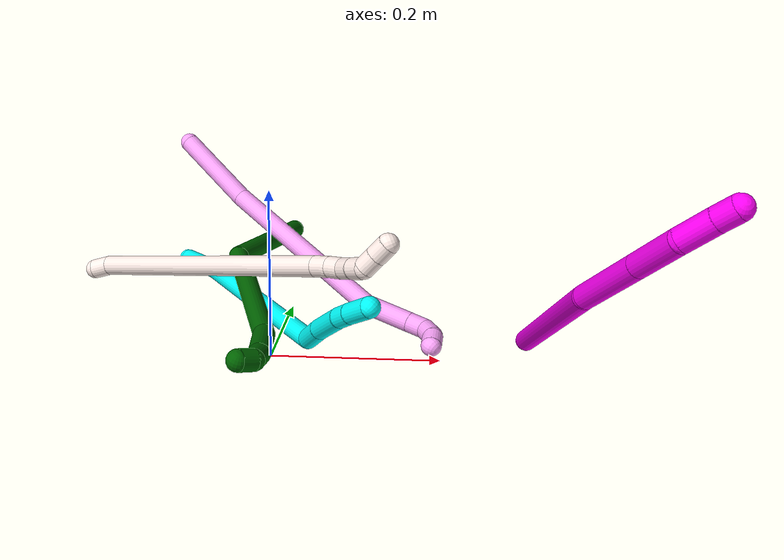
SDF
<sdf version="1.7">
 <world name="default">
  <model name="3">
   <static>0</static>
   <link name="3">
    <collision name="collision-cylinder-e_1_1_4">
     <pose>0.031587 -0.00819 -0.002259 1.83995 1.30806 1.57745</pose>
     <geometry><cylinder><radius>0.0125</radius><length>0.065418</length></cylinder></geometry>
     <surface>
      <friction><ode><mu>1.16</mu><mu2>1.16</mu2><slip1>0</slip1><slip2>0</slip2></ode></friction>
      <contact><ode><kp>1e+06</kp><kd>1</kd><max_vel>0</max_vel><min_depth>0.001</min_depth></ode></contact>
     </surface>
    </collision>
    <visual name="visual-cylinder-e_1_1_4">
     <pose>0.031587 -0.00819 -0.002259 1.83995 1.30806 1.57745</pose>
     <geometry><cylinder><radius>0.0125</radius><length>0.065418</length></cylinder></geometry>
     <material><ambient>0.003922 1 0.996078 1</ambient></material>
    </visual>
    <collision name="collision-cylinder-e_2_4_5">
     <pose>0.184734 -0.055429 -0.036492 2.25689 1.17727 1.90742</pose>
     <geometry><cylinder><radius>0.0125</radius><length>0.263243</length></cylinder></geometry>
     <surface>
      <friction><ode><mu>1.16</mu><mu2>1.16</mu2><slip1>0</slip1><slip2>0</slip2></ode></friction>
      <contact><ode><kp>1e+06</kp><kd>1</kd><max_vel>0</max_vel><min_depth>0.001</min_depth></ode></contact>
     </surface>
    </collision>
    <visual name="visual-cylinder-e_2_4_5">
     <pose>0.184734 -0.055429 -0.036492 2.25689 1.17727 1.90742</pose>
     <geometry><cylinder><radius>0.0125</radius><length>0.263243</length></cylinder></geometry>
     <material><ambient>0.003922 1 0.996078 1</ambient></material>
    </visual>
    <collision name="collision-cylinder-e_3_5_6">
     <pose>0.321094 -0.114647 -0.068887 1.59169 0.632976 0.645438</pose>
     <geometry><cylinder><radius>0.0125</radius><length>0.050037</length></cylinder></geometry>
     <surface>
      <friction><ode><mu>1.16</mu><mu2>1.16</mu2><slip1>0</slip1><slip2>0</slip2></ode></friction>
      <contact><ode><kp>1e+06</kp><kd>1</kd><max_vel>0</max_vel><min_depth>0.001</min_depth></ode></contact>
     </surface>
    </collision>
    <visual name="visual-cylinder-e_3_5_6">
     <pose>0.321094 -0.114647 -0.068887 1.59169 0.632976 0.645438</pose>
     <geometry><cylinder><radius>0.0125</radius><length>0.050037</length></cylinder></geometry>
     <material><ambient>0.003922 1 0.996078 1</ambient></material>
    </visual>
    <collision name="collision-cylinder-e_4_6_7">
     <pose>0.355429 -0.157884 -0.068773 1.5476 0.702489 0.687633</pose>
     <geometry><cylinder><radius>0.0125</radius><length>0.060469</length></cylinder></geometry>
     <surface>
      <friction><ode><mu>1.16</mu><mu2>1.16</mu2><slip1>0</slip1><slip2>0</slip2></ode></friction>
      <contact><ode><kp>1e+06</kp><kd>1</kd><max_vel>0</max_vel><min_depth>0.001</min_depth></ode></contact>
     </surface>
    </collision>
    <visual name="visual-cylinder-e_4_6_7">
     <pose>0.355429 -0.157884 -0.068773 1.5476 0.702489 0.687633</pose>
     <geometry><cylinder><radius>0.0125</radius><length>0.060469</length></cylinder></geometry>
     <material><ambient>0.003922 1 0.996078 1</ambient></material>
    </visual>
    <collision name="collision-cylinder-e_5_7_8">
     <pose>0.383493 -0.189018 -0.067125 1.43365 0.808691 0.713892</pose>
     <geometry><cylinder><radius>0.0125</radius><length>0.023582</length></cylinder></geometry>
     <surface>
      <friction><ode><mu>1.16</mu><mu2>1.16</mu2><slip1>0</slip1><slip2>0</slip2></ode></friction>
      <contact><ode><kp>1e+06</kp><kd>1</kd><max_vel>0</max_vel><min_depth>0.001</min_depth></ode></contact>
     </surface>
    </collision>
    <visual name="visual-cylinder-e_5_7_8">
     <pose>0.383493 -0.189018 -0.067125 1.43365 0.808691 0.713892</pose>
     <geometry><cylinder><radius>0.0125</radius><length>0.023582</length></cylinder></geometry>
     <material><ambient>0.003922 1 0.996078 1</ambient></material>
    </visual>
    <collision name="collision-cylinder-e_6_8_2">
     <pose>0.406178 -0.208929 -0.06352 1.36345 0.863304 0.715443</pose>
     <geometry><cylinder><radius>0.0125</radius><length>0.037251</length></cylinder></geometry>
     <surface>
      <friction><ode><mu>1.16</mu><mu2>1.16</mu2><slip1>0</slip1><slip2>0</slip2></ode></friction>
      <contact><ode><kp>1e+06</kp><kd>1</kd><max_vel>0</max_vel><min_depth>0.001</min_depth></ode></contact>
     </surface>
    </collision>
    <visual name="visual-cylinder-e_6_8_2">
     <pose>0.406178 -0.208929 -0.06352 1.36345 0.863304 0.715443</pose>
     <geometry><cylinder><radius>0.0125</radius><length>0.037251</length></cylinder></geometry>
     <material><ambient>0.003922 1 0.996078 1</ambient></material>
    </visual>
    <collision name="collision-sphere-2">
     <pose>0.420333 -0.220775 -0.061028 0 -0 0</pose>
     <geometry><sphere><radius>0.0125</radius></sphere></geometry>
     <surface>
      <friction><ode><mu>1.16</mu><mu2>1.16</mu2><slip1>0</slip1><slip2>0</slip2></ode></friction>
      <contact><ode><kp>1e+06</kp><kd>1</kd><max_vel>0</max_vel><min_depth>0.001</min_depth></ode></contact>
     </surface>
    </collision>
    <visual name="visual-sphere-2">
     <pose>0.420333 -0.220775 -0.061028 0 -0 0</pose>
     <geometry><sphere><radius>0.0125</radius></sphere></geometry>
     <material><ambient>0.003922 1 0.996078 1</ambient></material>
    </visual>
    <collision name="collision-sphere-4">
     <pose>0.063173 -0.016379 -0.004518 0 -0 0</pose>
     <geometry><sphere><radius>0.0125</radius></sphere></geometry>
     <surface>
      <friction><ode><mu>1.16</mu><mu2>1.16</mu2><slip1>0</slip1><slip2>0</slip2></ode></friction>
      <contact><ode><kp>1e+06</kp><kd>1</kd><max_vel>0</max_vel><min_depth>0.001</min_depth></ode></contact>
     </surface>
    </collision>
    <visual name="visual-sphere-4">
     <pose>0.063173 -0.016379 -0.004518 0 -0 0</pose>
     <geometry><sphere><radius>0.0125</radius></sphere></geometry>
     <material><ambient>0.003922 1 0.996078 1</ambient></material>
    </visual>
    <collision name="collision-sphere-1">
     <geometry><sphere><radius>0.0125</radius></sphere></geometry>
     <surface>
      <friction><ode><mu>1.16</mu><mu2>1.16</mu2><slip1>0</slip1><slip2>0</slip2></ode></friction>
      <contact><ode><kp>1e+06</kp><kd>1</kd><max_vel>0</max_vel><min_depth>0.001</min_depth></ode></contact>
     </surface>
    </collision>
    <visual name="visual-sphere-1">
     <geometry><sphere><radius>0.0125</radius></sphere></geometry>
     <material><ambient>0.003922 1 0.996078 1</ambient></material>
    </visual>
    <collision name="collision-sphere-8">
     <pose>0.392023 -0.197083 -0.066012 0 -0 0</pose>
     <geometry><sphere><radius>0.0125</radius></sphere></geometry>
     <surface>
      <friction><ode><mu>1.16</mu><mu2>1.16</mu2><slip1>0</slip1><slip2>0</slip2></ode></friction>
      <contact><ode><kp>1e+06</kp><kd>1</kd><max_vel>0</max_vel><min_depth>0.001</min_depth></ode></contact>
     </surface>
    </collision>
    <visual name="visual-sphere-8">
     <pose>0.392023 -0.197083 -0.066012 0 -0 0</pose>
     <geometry><sphere><radius>0.0125</radius></sphere></geometry>
     <material><ambient>0.003922 1 0.996078 1</ambient></material>
    </visual>
    <collision name="collision-sphere-5">
     <pose>0.306295 -0.09448 -0.068466 0 -0 0</pose>
     <geometry><sphere><radius>0.0125</radius></sphere></geometry>
     <surface>
      <friction><ode><mu>1.16</mu><mu2>1.16</mu2><slip1>0</slip1><slip2>0</slip2></ode></friction>
      <contact><ode><kp>1e+06</kp><kd>1</kd><max_vel>0</max_vel><min_depth>0.001</min_depth></ode></contact>
     </surface>
    </collision>
    <visual name="visual-sphere-5">
     <pose>0.306295 -0.09448 -0.068466 0 -0 0</pose>
     <geometry><sphere><radius>0.0125</radius></sphere></geometry>
     <material><ambient>0.003922 1 0.996078 1</ambient></material>
    </visual>
    <collision name="collision-sphere-6">
     <pose>0.335894 -0.134814 -0.069308 0 -0 0</pose>
     <geometry><sphere><radius>0.0125</radius></sphere></geometry>
     <surface>
      <friction><ode><mu>1.16</mu><mu2>1.16</mu2><slip1>0</slip1><slip2>0</slip2></ode></friction>
      <contact><ode><kp>1e+06</kp><kd>1</kd><max_vel>0</max_vel><min_depth>0.001</min_depth></ode></contact>
     </surface>
    </collision>
    <visual name="visual-sphere-6">
     <pose>0.335894 -0.134814 -0.069308 0 -0 0</pose>
     <geometry><sphere><radius>0.0125</radius></sphere></geometry>
     <material><ambient>0.003922 1 0.996078 1</ambient></material>
    </visual>
    <collision name="collision-sphere-7">
     <pose>0.374964 -0.180954 -0.068238 0 -0 0</pose>
     <geometry><sphere><radius>0.0125</radius></sphere></geometry>
     <surface>
      <friction><ode><mu>1.16</mu><mu2>1.16</mu2><slip1>0</slip1><slip2>0</slip2></ode></friction>
      <contact><ode><kp>1e+06</kp><kd>1</kd><max_vel>0</max_vel><min_depth>0.001</min_depth></ode></contact>
     </surface>
    </collision>
    <visual name="visual-sphere-7">
     <pose>0.374964 -0.180954 -0.068238 0 -0 0</pose>
     <geometry><sphere><radius>0.0125</radius></sphere></geometry>
     <material><ambient>0.003922 1 0.996078 1</ambient></material>
    </visual>
    <inertial>
     <pose>0.224858 -0.085302 -0.042617 0 -0 0</pose>
     <mass>0.5</mass>
     <inertia>
      <ixx>0.000443</ixx>
      <ixy>0</ixy>
      <ixz>0</ixz>
      <iyy>0.001957</iyy>
      <iyz>0</iyz>
      <izz>-0.000978</izz>
     </inertia>
    </inertial>
   </link>
   <pose>-0.162405 0.288501 0.041872 -0.997219 0.235406 -0.561123</pose>
  </model>
  <model name="4">
   <static>0</static>
   <link name="4">
    <collision name="collision-cylinder-e_1_1_4">
     <pose>-0.012872 0.002337 -0.056504 -3.10025 -0.223799 2.7777</pose>
     <geometry><cylinder><radius>0.0125</radius><length>0.115998</length></cylinder></geometry>
     <surface>
      <friction><ode><mu>1.16</mu><mu2>1.16</mu2><slip1>0</slip1><slip2>0</slip2></ode></friction>
      <contact><ode><kp>1e+06</kp><kd>1</kd><max_vel>0</max_vel><min_depth>0.001</min_depth></ode></contact>
     </surface>
    </collision>
    <visual name="visual-cylinder-e_1_1_4">
     <pose>-0.012872 0.002337 -0.056504 -3.10025 -0.223799 2.7777</pose>
     <geometry><cylinder><radius>0.0125</radius><length>0.115998</length></cylinder></geometry>
     <material><ambient>1 0.65098 0.996078 1</ambient></material>
    </visual>
    <collision name="collision-cylinder-e_2_4_5">
     <pose>-0.026803 -0.001243 -0.240394 3.09517 -0.008303 -0.353944</pose>
     <geometry><cylinder><radius>0.0125</radius><length>0.255054</length></cylinder></geometry>
     <surface>
      <friction><ode><mu>1.16</mu><mu2>1.16</mu2><slip1>0</slip1><slip2>0</slip2></ode></friction>
      <contact><ode><kp>1e+06</kp><kd>1</kd><max_vel>0</max_vel><min_depth>0.001</min_depth></ode></contact>
     </surface>
    </collision>
    <visual name="visual-cylinder-e_2_4_5">
     <pose>-0.026803 -0.001243 -0.240394 3.09517 -0.008303 -0.353944</pose>
     <geometry><cylinder><radius>0.0125</radius><length>0.255054</length></cylinder></geometry>
     <material><ambient>1 0.65098 0.996078 1</ambient></material>
    </visual>
    <collision name="collision-cylinder-e_3_5_6">
     <pose>-0.022754 -0.001487 -0.398262 -2.95761 0.163258 -1.45095</pose>
     <geometry><cylinder><radius>0.0125</radius><length>0.062848</length></cylinder></geometry>
     <surface>
      <friction><ode><mu>1.16</mu><mu2>1.16</mu2><slip1>0</slip1><slip2>0</slip2></ode></friction>
      <contact><ode><kp>1e+06</kp><kd>1</kd><max_vel>0</max_vel><min_depth>0.001</min_depth></ode></contact>
     </surface>
    </collision>
    <visual name="visual-cylinder-e_3_5_6">
     <pose>-0.022754 -0.001487 -0.398262 -2.95761 0.163258 -1.45095</pose>
     <geometry><cylinder><radius>0.0125</radius><length>0.062848</length></cylinder></geometry>
     <material><ambient>1 0.65098 0.996078 1</ambient></material>
    </visual>
    <collision name="collision-cylinder-e_4_6_7">
     <pose>-0.015956 0.00635 -0.439609 -2.94493 0.151441 -1.31117</pose>
     <geometry><cylinder><radius>0.0125</radius><length>0.022411</length></cylinder></geometry>
     <surface>
      <friction><ode><mu>1.16</mu><mu2>1.16</mu2><slip1>0</slip1><slip2>0</slip2></ode></friction>
      <contact><ode><kp>1e+06</kp><kd>1</kd><max_vel>0</max_vel><min_depth>0.001</min_depth></ode></contact>
     </surface>
    </collision>
    <visual name="visual-cylinder-e_4_6_7">
     <pose>-0.015956 0.00635 -0.439609 -2.94493 0.151441 -1.31117</pose>
     <geometry><cylinder><radius>0.0125</radius><length>0.022411</length></cylinder></geometry>
     <material><ambient>1 0.65098 0.996078 1</ambient></material>
    </visual>
    <collision name="collision-cylinder-e_5_7_8">
     <pose>-0.010521 0.003099 -0.460229 2.63485 0.323771 1.1254</pose>
     <geometry><cylinder><radius>0.0125</radius><length>0.02354</length></cylinder></geometry>
     <surface>
      <friction><ode><mu>1.16</mu><mu2>1.16</mu2><slip1>0</slip1><slip2>0</slip2></ode></friction>
      <contact><ode><kp>1e+06</kp><kd>1</kd><max_vel>0</max_vel><min_depth>0.001</min_depth></ode></contact>
     </surface>
    </collision>
    <visual name="visual-cylinder-e_5_7_8">
     <pose>-0.010521 0.003099 -0.460229 2.63485 0.323771 1.1254</pose>
     <geometry><cylinder><radius>0.0125</radius><length>0.02354</length></cylinder></geometry>
     <material><ambient>1 0.65098 0.996078 1</ambient></material>
    </visual>
    <collision name="collision-cylinder-e_6_8_2">
     <pose>-0.006143 -0.010568 -0.47573 2.17895 0.062949 0.120419</pose>
     <geometry><cylinder><radius>0.0125</radius><length>0.020149</length></cylinder></geometry>
     <surface>
      <friction><ode><mu>1.16</mu><mu2>1.16</mu2><slip1>0</slip1><slip2>0</slip2></ode></friction>
      <contact><ode><kp>1e+06</kp><kd>1</kd><max_vel>0</max_vel><min_depth>0.001</min_depth></ode></contact>
     </surface>
    </collision>
    <visual name="visual-cylinder-e_6_8_2">
     <pose>-0.006143 -0.010568 -0.47573 2.17895 0.062949 0.120419</pose>
     <geometry><cylinder><radius>0.0125</radius><length>0.020149</length></cylinder></geometry>
     <material><ambient>1 0.65098 0.996078 1</ambient></material>
    </visual>
    <collision name="collision-sphere-2">
     <pose>-0.005509 -0.01882 -0.481474 0 -0 0</pose>
     <geometry><sphere><radius>0.0125</radius></sphere></geometry>
     <surface>
      <friction><ode><mu>1.16</mu><mu2>1.16</mu2><slip1>0</slip1><slip2>0</slip2></ode></friction>
      <contact><ode><kp>1e+06</kp><kd>1</kd><max_vel>0</max_vel><min_depth>0.001</min_depth></ode></contact>
     </surface>
    </collision>
    <visual name="visual-sphere-2">
     <pose>-0.005509 -0.01882 -0.481474 0 -0 0</pose>
     <geometry><sphere><radius>0.0125</radius></sphere></geometry>
     <material><ambient>1 0.65098 0.996078 1</ambient></material>
    </visual>
    <collision name="collision-sphere-4">
     <pose>-0.025744 0.004675 -0.113008 0 -0 0</pose>
     <geometry><sphere><radius>0.0125</radius></sphere></geometry>
     <surface>
      <friction><ode><mu>1.16</mu><mu2>1.16</mu2><slip1>0</slip1><slip2>0</slip2></ode></friction>
      <contact><ode><kp>1e+06</kp><kd>1</kd><max_vel>0</max_vel><min_depth>0.001</min_depth></ode></contact>
     </surface>
    </collision>
    <visual name="visual-sphere-4">
     <pose>-0.025744 0.004675 -0.113008 0 -0 0</pose>
     <geometry><sphere><radius>0.0125</radius></sphere></geometry>
     <material><ambient>1 0.65098 0.996078 1</ambient></material>
    </visual>
    <collision name="collision-sphere-1">
     <geometry><sphere><radius>0.0125</radius></sphere></geometry>
     <surface>
      <friction><ode><mu>1.16</mu><mu2>1.16</mu2><slip1>0</slip1><slip2>0</slip2></ode></friction>
      <contact><ode><kp>1e+06</kp><kd>1</kd><max_vel>0</max_vel><min_depth>0.001</min_depth></ode></contact>
     </surface>
    </collision>
    <visual name="visual-sphere-1">
     <geometry><sphere><radius>0.0125</radius></sphere></geometry>
     <material><ambient>1 0.65098 0.996078 1</ambient></material>
    </visual>
    <collision name="collision-sphere-8">
     <pose>-0.006777 -0.002317 -0.469985 0 -0 0</pose>
     <geometry><sphere><radius>0.0125</radius></sphere></geometry>
     <surface>
      <friction><ode><mu>1.16</mu><mu2>1.16</mu2><slip1>0</slip1><slip2>0</slip2></ode></friction>
      <contact><ode><kp>1e+06</kp><kd>1</kd><max_vel>0</max_vel><min_depth>0.001</min_depth></ode></contact>
     </surface>
    </collision>
    <visual name="visual-sphere-8">
     <pose>-0.006777 -0.002317 -0.469985 0 -0 0</pose>
     <geometry><sphere><radius>0.0125</radius></sphere></geometry>
     <material><ambient>1 0.65098 0.996078 1</ambient></material>
    </visual>
    <collision name="collision-sphere-5">
     <pose>-0.027862 -0.00716 -0.367779 0 -0 0</pose>
     <geometry><sphere><radius>0.0125</radius></sphere></geometry>
     <surface>
      <friction><ode><mu>1.16</mu><mu2>1.16</mu2><slip1>0</slip1><slip2>0</slip2></ode></friction>
      <contact><ode><kp>1e+06</kp><kd>1</kd><max_vel>0</max_vel><min_depth>0.001</min_depth></ode></contact>
     </surface>
    </collision>
    <visual name="visual-sphere-5">
     <pose>-0.027862 -0.00716 -0.367779 0 -0 0</pose>
     <geometry><sphere><radius>0.0125</radius></sphere></geometry>
     <material><ambient>1 0.65098 0.996078 1</ambient></material>
    </visual>
    <collision name="collision-sphere-6">
     <pose>-0.017647 0.004185 -0.428745 0 -0 0</pose>
     <geometry><sphere><radius>0.0125</radius></sphere></geometry>
     <surface>
      <friction><ode><mu>1.16</mu><mu2>1.16</mu2><slip1>0</slip1><slip2>0</slip2></ode></friction>
      <contact><ode><kp>1e+06</kp><kd>1</kd><max_vel>0</max_vel><min_depth>0.001</min_depth></ode></contact>
     </surface>
    </collision>
    <visual name="visual-sphere-6">
     <pose>-0.017647 0.004185 -0.428745 0 -0 0</pose>
     <geometry><sphere><radius>0.0125</radius></sphere></geometry>
     <material><ambient>1 0.65098 0.996078 1</ambient></material>
    </visual>
    <collision name="collision-sphere-7">
     <pose>-0.014266 0.008514 -0.450473 0 -0 0</pose>
     <geometry><sphere><radius>0.0125</radius></sphere></geometry>
     <surface>
      <friction><ode><mu>1.16</mu><mu2>1.16</mu2><slip1>0</slip1><slip2>0</slip2></ode></friction>
      <contact><ode><kp>1e+06</kp><kd>1</kd><max_vel>0</max_vel><min_depth>0.001</min_depth></ode></contact>
     </surface>
    </collision>
    <visual name="visual-sphere-7">
     <pose>-0.014266 0.008514 -0.450473 0 -0 0</pose>
     <geometry><sphere><radius>0.0125</radius></sphere></geometry>
     <material><ambient>1 0.65098 0.996078 1</ambient></material>
    </visual>
    <inertial>
     <pose>-0.020977 -0.000274 -0.246338 0 -0 0</pose>
     <mass>0.5</mass>
     <inertia>
      <ixx>0.00073</ixx>
      <ixy>0</ixy>
      <ixz>0</ixz>
      <iyy>-0.001642</iyy>
      <iyz>0</iyz>
      <izz>5.6e-05</izz>
     </inertia>
    </inertial>
   </link>
   <pose>-0.155624 0.291275 0.20924 0.311859 -1.14247 -0.967291</pose>
  </model>
  <model name="6">
   <static>0</static>
   <link name="6">
    <collision name="collision-cylinder-e_1_1_4">
     <pose>-0.060504 -0.063833 0.022299 1.23471 -0.729947 -0.529765</pose>
     <geometry><cylinder><radius>0.0125</radius><length>0.181468</length></cylinder></geometry>
     <surface>
      <friction><ode><mu>1.16</mu><mu2>1.16</mu2><slip1>0</slip1><slip2>0</slip2></ode></friction>
      <contact><ode><kp>1e+06</kp><kd>1</kd><max_vel>0</max_vel><min_depth>0.001</min_depth></ode></contact>
     </surface>
    </collision>
    <visual name="visual-cylinder-e_1_1_4">
     <pose>-0.060504 -0.063833 0.022299 1.23471 -0.729947 -0.529765</pose>
     <geometry><cylinder><radius>0.0125</radius><length>0.181468</length></cylinder></geometry>
     <material><ambient>0 0.392157 0.003922 1</ambient></material>
    </visual>
    <collision name="collision-cylinder-e_2_4_5">
     <pose>-0.134074 -0.229665 0.070539 1.32175 -0.123508 -0.096077</pose>
     <geometry><cylinder><radius>0.0125</radius><length>0.212108</length></cylinder></geometry>
     <surface>
      <friction><ode><mu>1.16</mu><mu2>1.16</mu2><slip1>0</slip1><slip2>0</slip2></ode></friction>
      <contact><ode><kp>1e+06</kp><kd>1</kd><max_vel>0</max_vel><min_depth>0.001</min_depth></ode></contact>
     </surface>
    </collision>
    <visual name="visual-cylinder-e_2_4_5">
     <pose>-0.134074 -0.229665 0.070539 1.32175 -0.123508 -0.096077</pose>
     <geometry><cylinder><radius>0.0125</radius><length>0.212108</length></cylinder></geometry>
     <material><ambient>0 0.392157 0.003922 1</ambient></material>
    </visual>
    <collision name="collision-cylinder-e_3_5_6">
     <pose>-0.158635 -0.35872 0.106738 1.20838 -0.378186 -0.262699</pose>
     <geometry><cylinder><radius>0.0125</radius><length>0.06227</length></cylinder></geometry>
     <surface>
      <friction><ode><mu>1.16</mu><mu2>1.16</mu2><slip1>0</slip1><slip2>0</slip2></ode></friction>
      <contact><ode><kp>1e+06</kp><kd>1</kd><max_vel>0</max_vel><min_depth>0.001</min_depth></ode></contact>
     </surface>
    </collision>
    <visual name="visual-cylinder-e_3_5_6">
     <pose>-0.158635 -0.35872 0.106738 1.20838 -0.378186 -0.262699</pose>
     <geometry><cylinder><radius>0.0125</radius><length>0.06227</length></cylinder></geometry>
     <material><ambient>0 0.392157 0.003922 1</ambient></material>
    </visual>
    <collision name="collision-cylinder-e_4_6_7">
     <pose>-0.176445 -0.395079 0.121279 1.13943 -0.552473 -0.359266</pose>
     <geometry><cylinder><radius>0.0125</radius><length>0.024063</length></cylinder></geometry>
     <surface>
      <friction><ode><mu>1.16</mu><mu2>1.16</mu2><slip1>0</slip1><slip2>0</slip2></ode></friction>
      <contact><ode><kp>1e+06</kp><kd>1</kd><max_vel>0</max_vel><min_depth>0.001</min_depth></ode></contact>
     </surface>
    </collision>
    <visual name="visual-cylinder-e_4_6_7">
     <pose>-0.176445 -0.395079 0.121279 1.13943 -0.552473 -0.359266</pose>
     <geometry><cylinder><radius>0.0125</radius><length>0.024063</length></cylinder></geometry>
     <material><ambient>0 0.392157 0.003922 1</ambient></material>
    </visual>
    <collision name="collision-cylinder-e_5_7_2">
     <pose>-0.192374 -0.406883 0.127053 1.03295 -1.27676 -0.797618</pose>
     <geometry><cylinder><radius>0.0125</radius><length>0.02009</length></cylinder></geometry>
     <surface>
      <friction><ode><mu>1.16</mu><mu2>1.16</mu2><slip1>0</slip1><slip2>0</slip2></ode></friction>
      <contact><ode><kp>1e+06</kp><kd>1</kd><max_vel>0</max_vel><min_depth>0.001</min_depth></ode></contact>
     </surface>
    </collision>
    <visual name="visual-cylinder-e_5_7_2">
     <pose>-0.192374 -0.406883 0.127053 1.03295 -1.27676 -0.797618</pose>
     <geometry><cylinder><radius>0.0125</radius><length>0.02009</length></cylinder></geometry>
     <material><ambient>0 0.392157 0.003922 1</ambient></material>
    </visual>
    <collision name="collision-sphere-2">
     <pose>-0.201987 -0.409383 0.128544 0 -0 0</pose>
     <geometry><sphere><radius>0.0125</radius></sphere></geometry>
     <surface>
      <friction><ode><mu>1.16</mu><mu2>1.16</mu2><slip1>0</slip1><slip2>0</slip2></ode></friction>
      <contact><ode><kp>1e+06</kp><kd>1</kd><max_vel>0</max_vel><min_depth>0.001</min_depth></ode></contact>
     </surface>
    </collision>
    <visual name="visual-sphere-2">
     <pose>-0.201987 -0.409383 0.128544 0 -0 0</pose>
     <geometry><sphere><radius>0.0125</radius></sphere></geometry>
     <material><ambient>0 0.392157 0.003922 1</ambient></material>
    </visual>
    <collision name="collision-sphere-7">
     <pose>-0.18276 -0.404383 0.125561 0 -0 0</pose>
     <geometry><sphere><radius>0.0125</radius></sphere></geometry>
     <surface>
      <friction><ode><mu>1.16</mu><mu2>1.16</mu2><slip1>0</slip1><slip2>0</slip2></ode></friction>
      <contact><ode><kp>1e+06</kp><kd>1</kd><max_vel>0</max_vel><min_depth>0.001</min_depth></ode></contact>
     </surface>
    </collision>
    <visual name="visual-sphere-7">
     <pose>-0.18276 -0.404383 0.125561 0 -0 0</pose>
     <geometry><sphere><radius>0.0125</radius></sphere></geometry>
     <material><ambient>0 0.392157 0.003922 1</ambient></material>
    </visual>
    <collision name="collision-sphere-6">
     <pose>-0.170131 -0.385775 0.116997 0 -0 0</pose>
     <geometry><sphere><radius>0.0125</radius></sphere></geometry>
     <surface>
      <friction><ode><mu>1.16</mu><mu2>1.16</mu2><slip1>0</slip1><slip2>0</slip2></ode></friction>
      <contact><ode><kp>1e+06</kp><kd>1</kd><max_vel>0</max_vel><min_depth>0.001</min_depth></ode></contact>
     </surface>
    </collision>
    <visual name="visual-sphere-6">
     <pose>-0.170131 -0.385775 0.116997 0 -0 0</pose>
     <geometry><sphere><radius>0.0125</radius></sphere></geometry>
     <material><ambient>0 0.392157 0.003922 1</ambient></material>
    </visual>
    <collision name="collision-sphere-5">
     <pose>-0.147139 -0.331665 0.09648 0 -0 0</pose>
     <geometry><sphere><radius>0.0125</radius></sphere></geometry>
     <surface>
      <friction><ode><mu>1.16</mu><mu2>1.16</mu2><slip1>0</slip1><slip2>0</slip2></ode></friction>
      <contact><ode><kp>1e+06</kp><kd>1</kd><max_vel>0</max_vel><min_depth>0.001</min_depth></ode></contact>
     </surface>
    </collision>
    <visual name="visual-sphere-5">
     <pose>-0.147139 -0.331665 0.09648 0 -0 0</pose>
     <geometry><sphere><radius>0.0125</radius></sphere></geometry>
     <material><ambient>0 0.392157 0.003922 1</ambient></material>
    </visual>
    <collision name="collision-sphere-1">
     <geometry><sphere><radius>0.0125</radius></sphere></geometry>
     <surface>
      <friction><ode><mu>1.16</mu><mu2>1.16</mu2><slip1>0</slip1><slip2>0</slip2></ode></friction>
      <contact><ode><kp>1e+06</kp><kd>1</kd><max_vel>0</max_vel><min_depth>0.001</min_depth></ode></contact>
     </surface>
    </collision>
    <visual name="visual-sphere-1">
     <geometry><sphere><radius>0.0125</radius></sphere></geometry>
     <material><ambient>0 0.392157 0.003922 1</ambient></material>
    </visual>
    <collision name="collision-sphere-4">
     <pose>-0.121008 -0.127666 0.044599 0 -0 0</pose>
     <geometry><sphere><radius>0.0125</radius></sphere></geometry>
     <surface>
      <friction><ode><mu>1.16</mu><mu2>1.16</mu2><slip1>0</slip1><slip2>0</slip2></ode></friction>
      <contact><ode><kp>1e+06</kp><kd>1</kd><max_vel>0</max_vel><min_depth>0.001</min_depth></ode></contact>
     </surface>
    </collision>
    <visual name="visual-sphere-4">
     <pose>-0.121008 -0.127666 0.044599 0 -0 0</pose>
     <geometry><sphere><radius>0.0125</radius></sphere></geometry>
     <material><ambient>0 0.392157 0.003922 1</ambient></material>
    </visual>
    <inertial>
     <pose>-0.114813 -0.200633 0.062252 0 -0 0</pose>
     <mass>0.5</mass>
     <inertia>
      <ixx>0.000852</ixx>
      <ixy>0</ixy>
      <ixz>0</ixz>
      <iyy>0.000218</iyy>
      <iyz>0</iyz>
      <izz>0.001606</izz>
     </inertia>
    </inertial>
   </link>
   <pose>-0.008106 0.2885 0.087684 0.447422 0.161821 0.461262</pose>
  </model>
  <model name="10">
   <static>0</static>
   <link name="10">
    <collision name="collision-cylinder-e_1_1_4">
     <pose>-0.005886 -0.026728 0.14253 0.185372 -0.040564 -0.003771</pose>
     <geometry><cylinder><radius>0.0125</radius><length>0.290267</length></cylinder></geometry>
     <surface>
      <friction><ode><mu>1.16</mu><mu2>1.16</mu2><slip1>0</slip1><slip2>0</slip2></ode></friction>
      <contact><ode><kp>1e+06</kp><kd>1</kd><max_vel>0</max_vel><min_depth>0.001</min_depth></ode></contact>
     </surface>
    </collision>
    <visual name="visual-cylinder-e_1_1_4">
     <pose>-0.005886 -0.026728 0.14253 0.185372 -0.040564 -0.003771</pose>
     <geometry><cylinder><radius>0.0125</radius><length>0.290267</length></cylinder></geometry>
     <material><ambient>1 0 0.964706 1</ambient></material>
    </visual>
    <collision name="collision-cylinder-e_2_4_5">
     <pose>-0.00084 -0.052652 0.328596 -0.018446 0.245942 -0.00228</pose>
     <geometry><cylinder><radius>0.0125</radius><length>0.08979</length></cylinder></geometry>
     <surface>
      <friction><ode><mu>1.16</mu><mu2>1.16</mu2><slip1>0</slip1><slip2>0</slip2></ode></friction>
      <contact><ode><kp>1e+06</kp><kd>1</kd><max_vel>0</max_vel><min_depth>0.001</min_depth></ode></contact>
     </surface>
    </collision>
    <visual name="visual-cylinder-e_2_4_5">
     <pose>-0.00084 -0.052652 0.328596 -0.018446 0.245942 -0.00228</pose>
     <geometry><cylinder><radius>0.0125</radius><length>0.08979</length></cylinder></geometry>
     <material><ambient>1 0 0.964706 1</ambient></material>
    </visual>
    <collision name="collision-cylinder-e_3_5_6">
     <pose>0.017803 -0.051093 0.401771 -0.02551 0.254502 -0.003264</pose>
     <geometry><cylinder><radius>0.0125</radius><length>0.06127</length></cylinder></geometry>
     <surface>
      <friction><ode><mu>1.16</mu><mu2>1.16</mu2><slip1>0</slip1><slip2>0</slip2></ode></friction>
      <contact><ode><kp>1e+06</kp><kd>1</kd><max_vel>0</max_vel><min_depth>0.001</min_depth></ode></contact>
     </surface>
    </collision>
    <visual name="visual-cylinder-e_3_5_6">
     <pose>0.017803 -0.051093 0.401771 -0.02551 0.254502 -0.003264</pose>
     <geometry><cylinder><radius>0.0125</radius><length>0.06127</length></cylinder></geometry>
     <material><ambient>1 0 0.964706 1</ambient></material>
    </visual>
    <collision name="collision-cylinder-e_4_6_7">
     <pose>0.035809 -0.044889 0.445517 -0.368488 0.597631 -0.114685</pose>
     <geometry><cylinder><radius>0.0125</radius><length>0.036588</length></cylinder></geometry>
     <surface>
      <friction><ode><mu>1.16</mu><mu2>1.16</mu2><slip1>0</slip1><slip2>0</slip2></ode></friction>
      <contact><ode><kp>1e+06</kp><kd>1</kd><max_vel>0</max_vel><min_depth>0.001</min_depth></ode></contact>
     </surface>
    </collision>
    <visual name="visual-cylinder-e_4_6_7">
     <pose>0.035809 -0.044889 0.445517 -0.368488 0.597631 -0.114685</pose>
     <geometry><cylinder><radius>0.0125</radius><length>0.036588</length></cylinder></geometry>
     <material><ambient>1 0 0.964706 1</ambient></material>
    </visual>
    <collision name="collision-cylinder-e_5_7_2">
     <pose>0.052264 -0.03661 0.468341 -0.31421 0.591915 -0.096528</pose>
     <geometry><cylinder><radius>0.0125</radius><length>0.022085</length></cylinder></geometry>
     <surface>
      <friction><ode><mu>1.16</mu><mu2>1.16</mu2><slip1>0</slip1><slip2>0</slip2></ode></friction>
      <contact><ode><kp>1e+06</kp><kd>1</kd><max_vel>0</max_vel><min_depth>0.001</min_depth></ode></contact>
     </surface>
    </collision>
    <visual name="visual-cylinder-e_5_7_2">
     <pose>0.052264 -0.03661 0.468341 -0.31421 0.591915 -0.096528</pose>
     <geometry><cylinder><radius>0.0125</radius><length>0.022085</length></cylinder></geometry>
     <material><ambient>1 0 0.964706 1</ambient></material>
    </visual>
    <collision name="collision-sphere-2">
     <pose>0.058426 -0.033777 0.477056 0 -0 0</pose>
     <geometry><sphere><radius>0.0125</radius></sphere></geometry>
     <surface>
      <friction><ode><mu>1.16</mu><mu2>1.16</mu2><slip1>0</slip1><slip2>0</slip2></ode></friction>
      <contact><ode><kp>1e+06</kp><kd>1</kd><max_vel>0</max_vel><min_depth>0.001</min_depth></ode></contact>
     </surface>
    </collision>
    <visual name="visual-sphere-2">
     <pose>0.058426 -0.033777 0.477056 0 -0 0</pose>
     <geometry><sphere><radius>0.0125</radius></sphere></geometry>
     <material><ambient>1 0 0.964706 1</ambient></material>
    </visual>
    <collision name="collision-sphere-7">
     <pose>0.046103 -0.039442 0.459625 0 -0 0</pose>
     <geometry><sphere><radius>0.0125</radius></sphere></geometry>
     <surface>
      <friction><ode><mu>1.16</mu><mu2>1.16</mu2><slip1>0</slip1><slip2>0</slip2></ode></friction>
      <contact><ode><kp>1e+06</kp><kd>1</kd><max_vel>0</max_vel><min_depth>0.001</min_depth></ode></contact>
     </surface>
    </collision>
    <visual name="visual-sphere-7">
     <pose>0.046103 -0.039442 0.459625 0 -0 0</pose>
     <geometry><sphere><radius>0.0125</radius></sphere></geometry>
     <material><ambient>1 0 0.964706 1</ambient></material>
    </visual>
    <collision name="collision-sphere-6">
     <pose>0.025516 -0.050337 0.43141 0 -0 0</pose>
     <geometry><sphere><radius>0.0125</radius></sphere></geometry>
     <surface>
      <friction><ode><mu>1.16</mu><mu2>1.16</mu2><slip1>0</slip1><slip2>0</slip2></ode></friction>
      <contact><ode><kp>1e+06</kp><kd>1</kd><max_vel>0</max_vel><min_depth>0.001</min_depth></ode></contact>
     </surface>
    </collision>
    <visual name="visual-sphere-6">
     <pose>0.025516 -0.050337 0.43141 0 -0 0</pose>
     <geometry><sphere><radius>0.0125</radius></sphere></geometry>
     <material><ambient>1 0 0.964706 1</ambient></material>
    </visual>
    <collision name="collision-sphere-5">
     <pose>0.01009 -0.051849 0.372133 0 -0 0</pose>
     <geometry><sphere><radius>0.0125</radius></sphere></geometry>
     <surface>
      <friction><ode><mu>1.16</mu><mu2>1.16</mu2><slip1>0</slip1><slip2>0</slip2></ode></friction>
      <contact><ode><kp>1e+06</kp><kd>1</kd><max_vel>0</max_vel><min_depth>0.001</min_depth></ode></contact>
     </surface>
    </collision>
    <visual name="visual-sphere-5">
     <pose>0.01009 -0.051849 0.372133 0 -0 0</pose>
     <geometry><sphere><radius>0.0125</radius></sphere></geometry>
     <material><ambient>1 0 0.964706 1</ambient></material>
    </visual>
    <collision name="collision-sphere-1">
     <geometry><sphere><radius>0.0125</radius></sphere></geometry>
     <surface>
      <friction><ode><mu>1.16</mu><mu2>1.16</mu2><slip1>0</slip1><slip2>0</slip2></ode></friction>
      <contact><ode><kp>1e+06</kp><kd>1</kd><max_vel>0</max_vel><min_depth>0.001</min_depth></ode></contact>
     </surface>
    </collision>
    <visual name="visual-sphere-1">
     <geometry><sphere><radius>0.0125</radius></sphere></geometry>
     <material><ambient>1 0 0.964706 1</ambient></material>
    </visual>
    <collision name="collision-sphere-4">
     <pose>-0.011771 -0.053456 0.285059 0 -0 0</pose>
     <geometry><sphere><radius>0.0125</radius></sphere></geometry>
     <surface>
      <friction><ode><mu>1.16</mu><mu2>1.16</mu2><slip1>0</slip1><slip2>0</slip2></ode></friction>
      <contact><ode><kp>1e+06</kp><kd>1</kd><max_vel>0</max_vel><min_depth>0.001</min_depth></ode></contact>
     </surface>
    </collision>
    <visual name="visual-sphere-4">
     <pose>-0.011771 -0.053456 0.285059 0 -0 0</pose>
     <geometry><sphere><radius>0.0125</radius></sphere></geometry>
     <material><ambient>1 0 0.964706 1</ambient></material>
    </visual>
    <inertial>
     <pose>0.003543 -0.036135 0.244273 0 -0 0</pose>
     <mass>0.5</mass>
     <inertia>
      <ixx>0.002132</ixx>
      <ixy>0</ixy>
      <ixz>0</ixz>
      <iyy>0.002095</iyy>
      <iyz>0</iyz>
      <izz>0.000469</izz>
     </inertia>
    </inertial>
   </link>
   <pose>0.303549 0.050582 0.011497 0.914898 0.180383 0.080154</pose>
  </model>
  <model name="11">
   <static>0</static>
   <link name="11">
    <collision name="collision-cylinder-e_1_1_4">
     <pose>0.002994 -0.00373 -0.010817 2.80952 0.25597 1.30976</pose>
     <geometry><cylinder><radius>0.0125</radius><length>0.023654</length></cylinder></geometry>
     <surface>
      <friction><ode><mu>1.16</mu><mu2>1.16</mu2><slip1>0</slip1><slip2>0</slip2></ode></friction>
      <contact><ode><kp>1e+06</kp><kd>1</kd><max_vel>0</max_vel><min_depth>0.001</min_depth></ode></contact>
     </surface>
    </collision>
    <visual name="visual-cylinder-e_1_1_4">
     <pose>0.002994 -0.00373 -0.010817 2.80952 0.25597 1.30976</pose>
     <geometry><cylinder><radius>0.0125</radius><length>0.023654</length></cylinder></geometry>
     <material><ambient>1 0.933333 0.909804 1</ambient></material>
    </visual>
    <collision name="collision-cylinder-e_2_4_5">
     <pose>0.070585 -0.105686 -0.15322 2.50035 0.374791 1.03766</pose>
     <geometry><cylinder><radius>0.0125</radius><length>0.352907</length></cylinder></geometry>
     <surface>
      <friction><ode><mu>1.16</mu><mu2>1.16</mu2><slip1>0</slip1><slip2>0</slip2></ode></friction>
      <contact><ode><kp>1e+06</kp><kd>1</kd><max_vel>0</max_vel><min_depth>0.001</min_depth></ode></contact>
     </surface>
    </collision>
    <visual name="visual-cylinder-e_2_4_5">
     <pose>0.070585 -0.105686 -0.15322 2.50035 0.374791 1.03766</pose>
     <geometry><cylinder><radius>0.0125</radius><length>0.352907</length></cylinder></geometry>
     <material><ambient>1 0.933333 0.909804 1</ambient></material>
    </visual>
    <collision name="collision-cylinder-e_3_5_6">
     <pose>0.139395 -0.2104 -0.292544 2.4439 0.395349 1.00671</pose>
     <geometry><cylinder><radius>0.0125</radius><length>0.021884</length></cylinder></geometry>
     <surface>
      <friction><ode><mu>1.16</mu><mu2>1.16</mu2><slip1>0</slip1><slip2>0</slip2></ode></friction>
      <contact><ode><kp>1e+06</kp><kd>1</kd><max_vel>0</max_vel><min_depth>0.001</min_depth></ode></contact>
     </surface>
    </collision>
    <visual name="visual-cylinder-e_3_5_6">
     <pose>0.139395 -0.2104 -0.292544 2.4439 0.395349 1.00671</pose>
     <geometry><cylinder><radius>0.0125</radius><length>0.021884</length></cylinder></geometry>
     <material><ambient>1 0.933333 0.909804 1</ambient></material>
    </visual>
    <collision name="collision-cylinder-e_4_6_7">
     <pose>0.147671 -0.223374 -0.306977 2.37204 0.410925 0.95056</pose>
     <geometry><cylinder><radius>0.0125</radius><length>0.020336</length></cylinder></geometry>
     <surface>
      <friction><ode><mu>1.16</mu><mu2>1.16</mu2><slip1>0</slip1><slip2>0</slip2></ode></friction>
      <contact><ode><kp>1e+06</kp><kd>1</kd><max_vel>0</max_vel><min_depth>0.001</min_depth></ode></contact>
     </surface>
    </collision>
    <visual name="visual-cylinder-e_4_6_7">
     <pose>0.147671 -0.223374 -0.306977 2.37204 0.410925 0.95056</pose>
     <geometry><cylinder><radius>0.0125</radius><length>0.020336</length></cylinder></geometry>
     <material><ambient>1 0.933333 0.909804 1</ambient></material>
    </visual>
    <collision name="collision-cylinder-e_5_7_8">
     <pose>0.158485 -0.236042 -0.318855 2.26847 0.696885 1.32306</pose>
     <geometry><cylinder><radius>0.0125</radius><length>0.02104</length></cylinder></geometry>
     <surface>
      <friction><ode><mu>1.16</mu><mu2>1.16</mu2><slip1>0</slip1><slip2>0</slip2></ode></friction>
      <contact><ode><kp>1e+06</kp><kd>1</kd><max_vel>0</max_vel><min_depth>0.001</min_depth></ode></contact>
     </surface>
    </collision>
    <visual name="visual-cylinder-e_5_7_8">
     <pose>0.158485 -0.236042 -0.318855 2.26847 0.696885 1.32306</pose>
     <geometry><cylinder><radius>0.0125</radius><length>0.02104</length></cylinder></geometry>
     <material><ambient>1 0.933333 0.909804 1</ambient></material>
    </visual>
    <collision name="collision-cylinder-e_6_8_9">
     <pose>0.171224 -0.24806 -0.329609 2.33306 0.638444 1.31557</pose>
     <geometry><cylinder><radius>0.0125</radius><length>0.020095</length></cylinder></geometry>
     <surface>
      <friction><ode><mu>1.16</mu><mu2>1.16</mu2><slip1>0</slip1><slip2>0</slip2></ode></friction>
      <contact><ode><kp>1e+06</kp><kd>1</kd><max_vel>0</max_vel><min_depth>0.001</min_depth></ode></contact>
     </surface>
    </collision>
    <visual name="visual-cylinder-e_6_8_9">
     <pose>0.171224 -0.24806 -0.329609 2.33306 0.638444 1.31557</pose>
     <geometry><cylinder><radius>0.0125</radius><length>0.020095</length></cylinder></geometry>
     <material><ambient>1 0.933333 0.909804 1</ambient></material>
    </visual>
    <collision name="collision-cylinder-e_7_9_10">
     <pose>0.182479 -0.252829 -0.343657 -3.0164 0.552459 -2.70638</pose>
     <geometry><cylinder><radius>0.0125</radius><length>0.020072</length></cylinder></geometry>
     <surface>
      <friction><ode><mu>1.16</mu><mu2>1.16</mu2><slip1>0</slip1><slip2>0</slip2></ode></friction>
      <contact><ode><kp>1e+06</kp><kd>1</kd><max_vel>0</max_vel><min_depth>0.001</min_depth></ode></contact>
     </surface>
    </collision>
    <visual name="visual-cylinder-e_7_9_10">
     <pose>0.182479 -0.252829 -0.343657 -3.0164 0.552459 -2.70638</pose>
     <geometry><cylinder><radius>0.0125</radius><length>0.020072</length></cylinder></geometry>
     <material><ambient>1 0.933333 0.909804 1</ambient></material>
    </visual>
    <collision name="collision-cylinder-e_8_10_2">
     <pose>0.193016 -0.250701 -0.360571 -3.01652 0.554844 -2.70869</pose>
     <geometry><cylinder><radius>0.0125</radius><length>0.020011</length></cylinder></geometry>
     <surface>
      <friction><ode><mu>1.16</mu><mu2>1.16</mu2><slip1>0</slip1><slip2>0</slip2></ode></friction>
      <contact><ode><kp>1e+06</kp><kd>1</kd><max_vel>0</max_vel><min_depth>0.001</min_depth></ode></contact>
     </surface>
    </collision>
    <visual name="visual-cylinder-e_8_10_2">
     <pose>0.193016 -0.250701 -0.360571 -3.01652 0.554844 -2.70869</pose>
     <geometry><cylinder><radius>0.0125</radius><length>0.020011</length></cylinder></geometry>
     <material><ambient>1 0.933333 0.909804 1</ambient></material>
    </visual>
    <collision name="collision-sphere-2">
     <pose>0.198287 -0.24964 -0.369009 0 -0 0</pose>
     <geometry><sphere><radius>0.0125</radius></sphere></geometry>
     <surface>
      <friction><ode><mu>1.16</mu><mu2>1.16</mu2><slip1>0</slip1><slip2>0</slip2></ode></friction>
      <contact><ode><kp>1e+06</kp><kd>1</kd><max_vel>0</max_vel><min_depth>0.001</min_depth></ode></contact>
     </surface>
    </collision>
    <visual name="visual-sphere-2">
     <pose>0.198287 -0.24964 -0.369009 0 -0 0</pose>
     <geometry><sphere><radius>0.0125</radius></sphere></geometry>
     <material><ambient>1 0.933333 0.909804 1</ambient></material>
    </visual>
    <collision name="collision-sphere-10">
     <pose>0.187745 -0.251762 -0.352133 0 -0 0</pose>
     <geometry><sphere><radius>0.0125</radius></sphere></geometry>
     <surface>
      <friction><ode><mu>1.16</mu><mu2>1.16</mu2><slip1>0</slip1><slip2>0</slip2></ode></friction>
      <contact><ode><kp>1e+06</kp><kd>1</kd><max_vel>0</max_vel><min_depth>0.001</min_depth></ode></contact>
     </surface>
    </collision>
    <visual name="visual-sphere-10">
     <pose>0.187745 -0.251762 -0.352133 0 -0 0</pose>
     <geometry><sphere><radius>0.0125</radius></sphere></geometry>
     <material><ambient>1 0.933333 0.909804 1</ambient></material>
    </visual>
    <collision name="collision-sphere-9">
     <pose>0.177212 -0.253896 -0.335181 0 -0 0</pose>
     <geometry><sphere><radius>0.0125</radius></sphere></geometry>
     <surface>
      <friction><ode><mu>1.16</mu><mu2>1.16</mu2><slip1>0</slip1><slip2>0</slip2></ode></friction>
      <contact><ode><kp>1e+06</kp><kd>1</kd><max_vel>0</max_vel><min_depth>0.001</min_depth></ode></contact>
     </surface>
    </collision>
    <visual name="visual-sphere-9">
     <pose>0.177212 -0.253896 -0.335181 0 -0 0</pose>
     <geometry><sphere><radius>0.0125</radius></sphere></geometry>
     <material><ambient>1 0.933333 0.909804 1</ambient></material>
    </visual>
    <collision name="collision-sphere-4">
     <pose>0.005989 -0.00746 -0.021634 0 -0 0</pose>
     <geometry><sphere><radius>0.0125</radius></sphere></geometry>
     <surface>
      <friction><ode><mu>1.16</mu><mu2>1.16</mu2><slip1>0</slip1><slip2>0</slip2></ode></friction>
      <contact><ode><kp>1e+06</kp><kd>1</kd><max_vel>0</max_vel><min_depth>0.001</min_depth></ode></contact>
     </surface>
    </collision>
    <visual name="visual-sphere-4">
     <pose>0.005989 -0.00746 -0.021634 0 -0 0</pose>
     <geometry><sphere><radius>0.0125</radius></sphere></geometry>
     <material><ambient>1 0.933333 0.909804 1</ambient></material>
    </visual>
    <collision name="collision-sphere-1">
     <geometry><sphere><radius>0.0125</radius></sphere></geometry>
     <surface>
      <friction><ode><mu>1.16</mu><mu2>1.16</mu2><slip1>0</slip1><slip2>0</slip2></ode></friction>
      <contact><ode><kp>1e+06</kp><kd>1</kd><max_vel>0</max_vel><min_depth>0.001</min_depth></ode></contact>
     </surface>
    </collision>
    <visual name="visual-sphere-1">
     <geometry><sphere><radius>0.0125</radius></sphere></geometry>
     <material><ambient>1 0.933333 0.909804 1</ambient></material>
    </visual>
    <collision name="collision-sphere-8">
     <pose>0.165237 -0.242224 -0.324038 0 -0 0</pose>
     <geometry><sphere><radius>0.0125</radius></sphere></geometry>
     <surface>
      <friction><ode><mu>1.16</mu><mu2>1.16</mu2><slip1>0</slip1><slip2>0</slip2></ode></friction>
      <contact><ode><kp>1e+06</kp><kd>1</kd><max_vel>0</max_vel><min_depth>0.001</min_depth></ode></contact>
     </surface>
    </collision>
    <visual name="visual-sphere-8">
     <pose>0.165237 -0.242224 -0.324038 0 -0 0</pose>
     <geometry><sphere><radius>0.0125</radius></sphere></geometry>
     <material><ambient>1 0.933333 0.909804 1</ambient></material>
    </visual>
    <collision name="collision-sphere-5">
     <pose>0.135181 -0.203913 -0.284806 0 -0 0</pose>
     <geometry><sphere><radius>0.0125</radius></sphere></geometry>
     <surface>
      <friction><ode><mu>1.16</mu><mu2>1.16</mu2><slip1>0</slip1><slip2>0</slip2></ode></friction>
      <contact><ode><kp>1e+06</kp><kd>1</kd><max_vel>0</max_vel><min_depth>0.001</min_depth></ode></contact>
     </surface>
    </collision>
    <visual name="visual-sphere-5">
     <pose>0.135181 -0.203913 -0.284806 0 -0 0</pose>
     <geometry><sphere><radius>0.0125</radius></sphere></geometry>
     <material><ambient>1 0.933333 0.909804 1</ambient></material>
    </visual>
    <collision name="collision-sphere-6">
     <pose>0.143609 -0.216888 -0.300282 0 -0 0</pose>
     <geometry><sphere><radius>0.0125</radius></sphere></geometry>
     <surface>
      <friction><ode><mu>1.16</mu><mu2>1.16</mu2><slip1>0</slip1><slip2>0</slip2></ode></friction>
      <contact><ode><kp>1e+06</kp><kd>1</kd><max_vel>0</max_vel><min_depth>0.001</min_depth></ode></contact>
     </surface>
    </collision>
    <visual name="visual-sphere-6">
     <pose>0.143609 -0.216888 -0.300282 0 -0 0</pose>
     <geometry><sphere><radius>0.0125</radius></sphere></geometry>
     <material><ambient>1 0.933333 0.909804 1</ambient></material>
    </visual>
    <collision name="collision-sphere-7">
     <pose>0.151733 -0.22986 -0.313672 0 -0 0</pose>
     <geometry><sphere><radius>0.0125</radius></sphere></geometry>
     <surface>
      <friction><ode><mu>1.16</mu><mu2>1.16</mu2><slip1>0</slip1><slip2>0</slip2></ode></friction>
      <contact><ode><kp>1e+06</kp><kd>1</kd><max_vel>0</max_vel><min_depth>0.001</min_depth></ode></contact>
     </surface>
    </collision>
    <visual name="visual-sphere-7">
     <pose>0.151733 -0.22986 -0.313672 0 -0 0</pose>
     <geometry><sphere><radius>0.0125</radius></sphere></geometry>
     <material><ambient>1 0.933333 0.909804 1</ambient></material>
    </visual>
    <inertial>
     <pose>0.090669 -0.133151 -0.188837 0 -0 0</pose>
     <mass>0.5</mass>
     <inertia>
      <ixx>0.004707</ixx>
      <ixy>0</ixy>
      <ixz>0</ixz>
      <iyy>0.002131</iyy>
      <iyz>0</iyz>
      <izz>0.000671</izz>
     </inertia>
    </inertial>
   </link>
   <pose>-0.260664 0.163503 0.057103 2.0813 -0.735658 -1.76392</pose>
  </model>
 </world>
</sdf>
